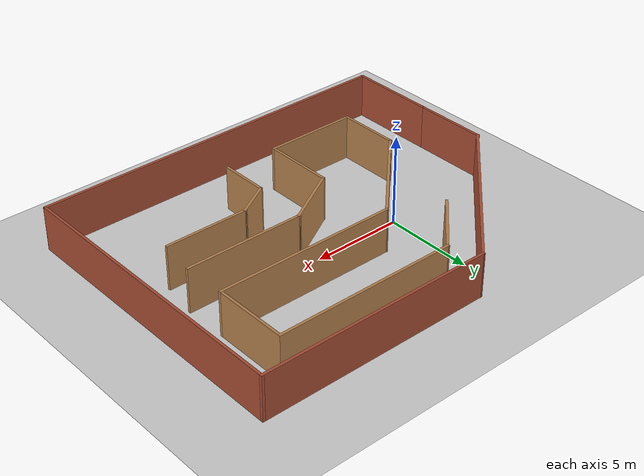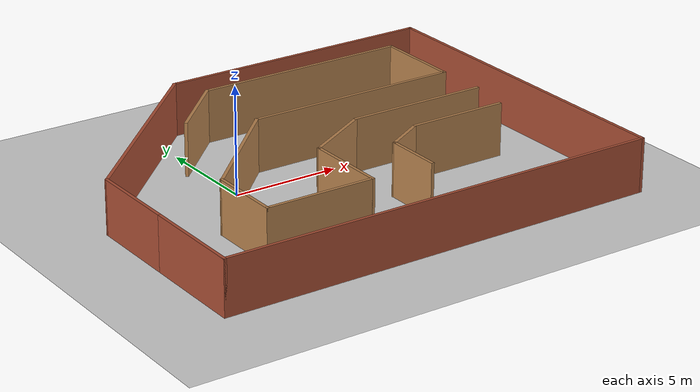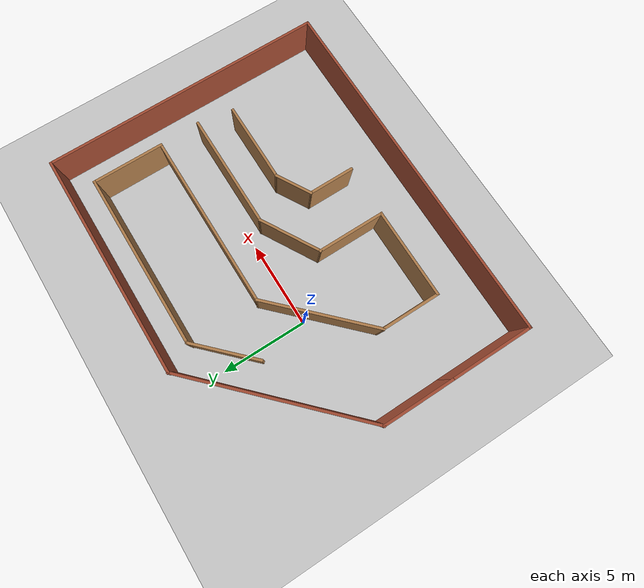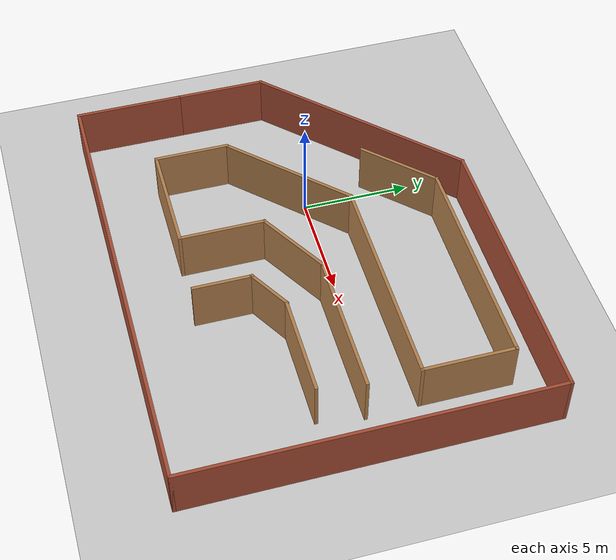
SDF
<sdf version="1.7">
 <world name="default">
  <light name="sun" type="directional">
   <pose>0 0 10 0 -0 0</pose>
   <diffuse>0.8 0.8 0.8 1</diffuse>
   <specular>0.2 0.2 0.2 1</specular>
   <attenuation>
    <range>1000</range>
    <constant>0.9</constant>
    <linear>0.01</linear>
    <quadratic>0.001</quadratic>
   </attenuation>
   <direction>-0.5 0.1 -0.9</direction>
   <spot><inner_angle>0</inner_angle><outer_angle>0</outer_angle><falloff>0</falloff></spot>
  </light>
  <model name="ground_plane">
   <static>1</static>
   <link name="link">
    <collision name="collision">
     <geometry><plane><normal>0 0 1</normal><size>100 100</size></plane></geometry>
     <surface><friction><ode><mu>100</mu><mu2>50</mu2></ode></friction></surface>
    </collision>
    <visual name="visual">
     <cast_shadows>0</cast_shadows>
     <geometry><plane><normal>0 0 1</normal><size>100 100</size></plane></geometry>
     <material>
      <script><uri>file://media/materials/scripts/gazebo.material</uri><name>Gazebo/Grey</name></script>
     </material>
    </visual>
   </link>
  </model>
  <gravity>0 0 -9.8</gravity>
  <magnetic_field>6e-06 2.3e-05 -4.2e-05</magnetic_field>
  <atmosphere type="adiabatic"/>
  <physics type="ode">
   <max_step_size>0.001</max_step_size>
   <real_time_factor>1</real_time_factor>
   <real_time_update_rate>1000</real_time_update_rate>
  </physics>
  <scene><ambient>0.4 0.4 0.4 1</ambient><background>0.7 0.7 0.7 1</background><shadows>1</shadows></scene>
  <audio><device>default</device></audio>
  <spherical_coordinates>
   <surface_model>EARTH_WGS84</surface_model>
   <latitude_deg>0</latitude_deg>
   <longitude_deg>0</longitude_deg>
   <elevation>0</elevation>
   <heading_deg>0</heading_deg>
  </spherical_coordinates>
  <model name="Untitled">
   <pose>3.94947 -1.07447 0 0 -0 0</pose>
   <link name="Wall_0">
    <collision name="Wall_0_Collision">
     <geometry><box><size>4.25 0.15 2.5</size></box></geometry>
     <pose>0 0 1.25 0 -0 0</pose>
    </collision>
    <visual name="Wall_0_Visual">
     <pose>0 0 1.25 0 -0 0</pose>
     <geometry><box><size>4.25 0.15 2.5</size></box></geometry>
     <material>
      <script><uri>file://media/materials/scripts/gazebo.material</uri><name>Gazebo/Bricks</name></script>
      <ambient>1 1 1 1</ambient>
     </material>
     <meta><layer>0</layer></meta>
    </visual>
    <pose>-10.4095 -1.41553 0 0 -0 -1.5708</pose>
   </link>
   <link name="Wall_1">
    <collision name="Wall_1_Collision">
     <geometry><box><size>5 0.15 2.5</size></box></geometry>
     <pose>0 0 1.25 0 -0 0</pose>
    </collision>
    <visual name="Wall_1_Visual">
     <pose>0 0 1.25 0 -0 0</pose>
     <geometry><box><size>5 0.15 2.5</size></box></geometry>
     <material>
      <script><uri>file://media/materials/scripts/gazebo.material</uri><name>Gazebo/Bricks</name></script>
      <ambient>1 1 1 1</ambient>
     </material>
     <meta><layer>0</layer></meta>
    </visual>
    <pose>-10.4095 -5.89053 0 0 -0 -1.5708</pose>
   </link>
   <link name="Wall_10">
    <collision name="Wall_10_Collision">
     <geometry><box><size>10.25 0.15 2.5</size></box></geometry>
     <pose>0 0 1.25 0 -0 0</pose>
    </collision>
    <visual name="Wall_10_Visual">
     <pose>0 0 1.25 0 -0 0</pose>
     <geometry><box><size>10.25 0.15 2.5</size></box></geometry>
     <material>
      <script><uri>file://media/materials/scripts/gazebo.material</uri><name>Gazebo/Wood</name></script>
      <ambient>1 1 1 1</ambient>
     </material>
     <meta><layer>0</layer></meta>
    </visual>
    <pose>3.16584 2.66831 0 0 -0 3.14159</pose>
   </link>
   <link name="Wall_11">
    <collision name="Wall_11_Collision">
     <geometry><box><size>6.75 0.15 2.5</size></box></geometry>
     <pose>0 0 1.25 0 -0 0</pose>
    </collision>
    <visual name="Wall_11_Visual">
     <pose>0 0 1.25 0 -0 0</pose>
     <geometry><box><size>6.75 0.15 2.5</size></box></geometry>
     <material>
      <script><uri>file://media/materials/scripts/gazebo.material</uri><name>Gazebo/Wood</name></script>
      <ambient>1 1 1 1</ambient>
     </material>
     <meta><layer>0</layer></meta>
    </visual>
    <pose>-4.21761 0.334859 0 0 -0 -2.35619</pose>
   </link>
   <link name="Wall_12">
    <collision name="Wall_12_Collision">
     <geometry><box><size>3.5 0.15 2.5</size></box></geometry>
     <pose>0 0 1.25 0 -0 0</pose>
    </collision>
    <visual name="Wall_12_Visual">
     <pose>0 0 1.25 0 -0 0</pose>
     <geometry><box><size>3.5 0.15 2.5</size></box></geometry>
     <material>
      <script><uri>file://media/materials/scripts/gazebo.material</uri><name>Gazebo/Wood</name></script>
      <ambient>1 1 1 1</ambient>
     </material>
     <meta><layer>0</layer></meta>
    </visual>
    <pose>-6.55107 -3.67359 0 0 -0 -1.5708</pose>
   </link>
   <link name="Wall_13">
    <collision name="Wall_13_Collision">
     <geometry><box><size>5.25 0.15 2.5</size></box></geometry>
     <pose>0 0 1.25 0 -0 0</pose>
    </collision>
    <visual name="Wall_13_Visual">
     <pose>0 0 1.25 0 -0 0</pose>
     <geometry><box><size>5.25 0.15 2.5</size></box></geometry>
     <material>
      <script><uri>file://media/materials/scripts/gazebo.material</uri><name>Gazebo/Wood</name></script>
      <ambient>1 1 1 1</ambient>
     </material>
     <meta><layer>0</layer></meta>
    </visual>
    <pose>-4.00106 -5.34859 0 0 -0 0</pose>
   </link>
   <link name="Wall_14">
    <collision name="Wall_14_Collision">
     <geometry><box><size>4 0.15 2.5</size></box></geometry>
     <pose>0 0 1.25 0 -0 0</pose>
    </collision>
    <visual name="Wall_14_Visual">
     <pose>0 0 1.25 0 -0 0</pose>
     <geometry><box><size>4 0.15 2.5</size></box></geometry>
     <material>
      <script><uri>file://media/materials/scripts/gazebo.material</uri><name>Gazebo/Wood</name></script>
      <ambient>1 1 1 1</ambient>
     </material>
     <meta><layer>0</layer></meta>
    </visual>
    <pose>-1.45107 -3.42359 0 0 -0 1.5708</pose>
   </link>
   <link name="Wall_15">
    <collision name="Wall_15_Collision">
     <geometry><box><size>3.75 0.15 2.5</size></box></geometry>
     <pose>0 0 1.25 0 -0 0</pose>
    </collision>
    <visual name="Wall_15_Visual">
     <pose>0 0 1.25 0 -0 0</pose>
     <geometry><box><size>3.75 0.15 2.5</size></box></geometry>
     <material>
      <script><uri>file://media/materials/scripts/gazebo.material</uri><name>Gazebo/Wood</name></script>
      <ambient>1 1 1 1</ambient>
     </material>
     <meta><layer>0</layer></meta>
    </visual>
    <pose>0.10778 -0.598593 0 0 -0 0.523599</pose>
   </link>
   <link name="Wall_16">
    <collision name="Wall_16_Collision">
     <geometry><box><size>6.75 0.15 2.5</size></box></geometry>
     <pose>0 0 1.25 0 -0 0</pose>
    </collision>
    <visual name="Wall_16_Visual">
     <pose>0 0 1.25 0 -0 0</pose>
     <geometry><box><size>6.75 0.15 2.5</size></box></geometry>
     <material>
      <script><uri>file://media/materials/scripts/gazebo.material</uri><name>Gazebo/Wood</name></script>
      <ambient>1 1 1 1</ambient>
     </material>
     <meta><layer>0</layer></meta>
    </visual>
    <pose>4.96663 0.301407 0 0 -0 0</pose>
   </link>
   <link name="Wall_18">
    <collision name="Wall_18_Collision">
     <geometry><box><size>2.75 0.15 2.5</size></box></geometry>
     <pose>0 0 1.25 0 -0 0</pose>
    </collision>
    <visual name="Wall_18_Visual">
     <pose>0 0 1.25 0 -0 0</pose>
     <geometry><box><size>2.75 0.15 2.5</size></box></geometry>
     <material>
      <script><uri>file://media/materials/scripts/gazebo.material</uri><name>Gazebo/Wood</name></script>
      <ambient>1 1 1 1</ambient>
     </material>
     <meta><layer>0</layer></meta>
    </visual>
    <pose>1.508 -4.10743 0 0 -0 1.5708</pose>
   </link>
   <link name="Wall_19">
    <collision name="Wall_19_Collision">
     <geometry><box><size>2.25 0.15 2.5</size></box></geometry>
     <pose>0 0 1.25 0 -0 0</pose>
    </collision>
    <visual name="Wall_19_Visual">
     <pose>0 0 1.25 0 -0 0</pose>
     <geometry><box><size>2.25 0.15 2.5</size></box></geometry>
     <material>
      <script><uri>file://media/materials/scripts/gazebo.material</uri><name>Gazebo/Wood</name></script>
      <ambient>1 1 1 1</ambient>
     </material>
     <meta><layer>0</layer></meta>
    </visual>
    <pose>2.41733 -2.28243 0 0 -0 0.523599</pose>
   </link>
   <link name="Wall_2">
    <collision name="Wall_2_Collision">
     <geometry><box><size>21 0.15 2.5</size></box></geometry>
     <pose>0 0 1.25 0 -0 0</pose>
    </collision>
    <visual name="Wall_2_Visual">
     <pose>0 0 1.25 0 -0 0</pose>
     <geometry><box><size>21 0.15 2.5</size></box></geometry>
     <material>
      <script><uri>file://media/materials/scripts/gazebo.material</uri><name>Gazebo/Bricks</name></script>
      <ambient>1 1 1 1</ambient>
     </material>
     <meta><layer>0</layer></meta>
    </visual>
    <pose>0.015531 -8.31553 0 0 -0 0</pose>
   </link>
   <link name="Wall_20">
    <collision name="Wall_20_Collision">
     <geometry><box><size>4.75 0.15 2.5</size></box></geometry>
     <pose>0 0 1.25 0 -0 0</pose>
    </collision>
    <visual name="Wall_20_Visual">
     <pose>0 0 1.25 0 -0 0</pose>
     <geometry><box><size>4.75 0.15 2.5</size></box></geometry>
     <material>
      <script><uri>file://media/materials/scripts/gazebo.material</uri><name>Gazebo/Wood</name></script>
      <ambient>1 1 1 1</ambient>
     </material>
     <meta><layer>0</layer></meta>
    </visual>
    <pose>5.62666 -1.75743 0 0 -0 0</pose>
   </link>
   <link name="Wall_3">
    <collision name="Wall_3_Collision">
     <geometry><box><size>16.75 0.15 2.5</size></box></geometry>
     <pose>0 0 1.25 0 -0 0</pose>
    </collision>
    <visual name="Wall_3_Visual">
     <pose>0 0 1.25 0 -0 0</pose>
     <geometry><box><size>16.75 0.15 2.5</size></box></geometry>
     <material>
      <script><uri>file://media/materials/scripts/gazebo.material</uri><name>Gazebo/Bricks</name></script>
      <ambient>1 1 1 1</ambient>
     </material>
     <meta><layer>0</layer></meta>
    </visual>
    <pose>10.4405 -0.015531 0 0 -0 1.5708</pose>
   </link>
   <link name="Wall_4">
    <collision name="Wall_4_Collision">
     <geometry><box><size>13.25 0.15 2.5</size></box></geometry>
     <pose>0 0 1.25 0 -0 0</pose>
    </collision>
    <visual name="Wall_4_Visual">
     <pose>0 0 1.25 0 -0 0</pose>
     <geometry><box><size>13.25 0.15 2.5</size></box></geometry>
     <material>
      <script><uri>file://media/materials/scripts/gazebo.material</uri><name>Gazebo/Bricks</name></script>
      <ambient>1 1 1 1</ambient>
     </material>
     <meta><layer>0</layer></meta>
    </visual>
    <pose>3.89053 8.28447 0 0 -0 3.14159</pose>
   </link>
   <link name="Wall_5">
    <collision name="Wall_5_Collision">
     <geometry><box><size>11.0397 0.15 2.5</size></box></geometry>
     <pose>0 0 1.25 0 -0 0</pose>
    </collision>
    <visual name="Wall_5_Visual">
     <pose>0 0 1.25 0 -0 0</pose>
     <geometry><box><size>11.0397 0.15 2.5</size></box></geometry>
     <material>
      <script><uri>file://media/materials/scripts/gazebo.material</uri><name>Gazebo/Bricks</name></script>
      <ambient>1 1 1 1</ambient>
     </material>
     <meta><layer>0</layer></meta>
    </visual>
    <pose>-6.53447 4.45947 0 0 -0 -2.36269</pose>
   </link>
   <link name="Wall_7">
    <collision name="Wall_7_Collision">
     <geometry><box><size>4 0.15 2.5</size></box></geometry>
     <pose>0 0 1.25 0 -0 0</pose>
    </collision>
    <visual name="Wall_7_Visual">
     <pose>0 0 1.25 0 -0 0</pose>
     <geometry><box><size>4 0.15 2.5</size></box></geometry>
     <material>
      <script><uri>file://media/materials/scripts/gazebo.material</uri><name>Gazebo/Wood</name></script>
      <ambient>1 1 1 1</ambient>
     </material>
     <meta><layer>0</layer></meta>
    </visual>
    <pose>-3.24534 5.40713 0 0 -0 0.785398</pose>
   </link>
   <link name="Wall_8">
    <collision name="Wall_8_Collision">
     <geometry><box><size>10.25 0.15 2.5</size></box></geometry>
     <pose>0 0 1.25 0 -0 0</pose>
    </collision>
    <visual name="Wall_8_Visual">
     <pose>0 0 1.25 0 -0 0</pose>
     <geometry><box><size>10.25 0.15 2.5</size></box></geometry>
     <material>
      <script><uri>file://media/materials/scripts/gazebo.material</uri><name>Gazebo/Wood</name></script>
      <ambient>1 1 1 1</ambient>
     </material>
     <meta><layer>0</layer></meta>
    </visual>
    <pose>3.16584 6.76831 0 0 -0 0</pose>
   </link>
   <link name="Wall_9">
    <collision name="Wall_9_Collision">
     <geometry><box><size>4.25 0.15 2.5</size></box></geometry>
     <pose>0 0 1.25 0 -0 0</pose>
    </collision>
    <visual name="Wall_9_Visual">
     <pose>0 0 1.25 0 -0 0</pose>
     <geometry><box><size>4.25 0.15 2.5</size></box></geometry>
     <material>
      <script><uri>file://media/materials/scripts/gazebo.material</uri><name>Gazebo/Wood</name></script>
      <ambient>1 1 1 1</ambient>
     </material>
     <meta><layer>0</layer></meta>
    </visual>
    <pose>8.21584 4.71831 0 0 -0 -1.5708</pose>
   </link>
   <static>1</static>
  </model>
 </world>
</sdf>
